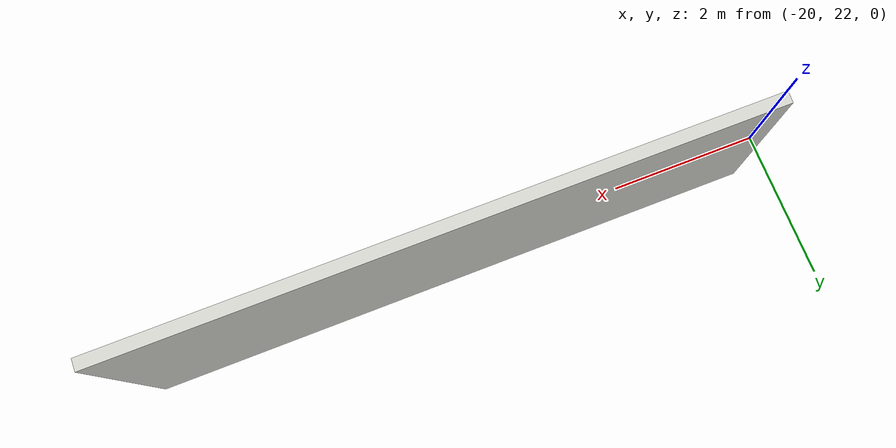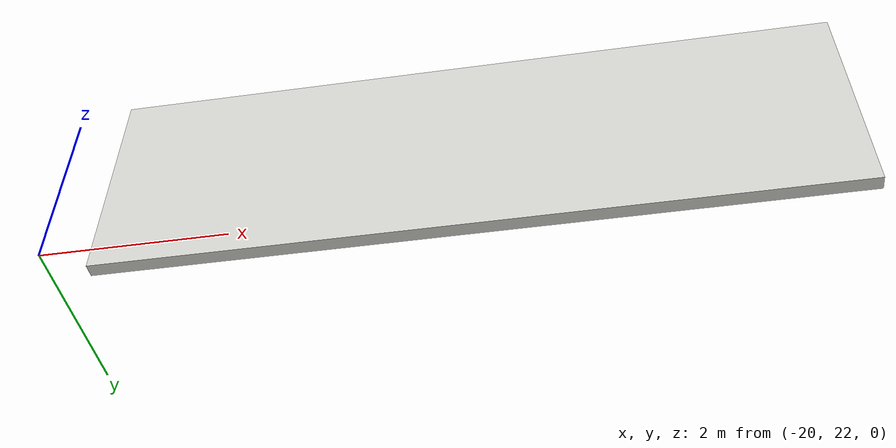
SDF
<?xml version='1.0'?>
<sdf version='1.4'>
  <model name='MIT_Tunnel'>
    <pose frame=''>3.61177 6.74312 0 0 -0 0</pose>

<link name='Wall_1'>
      <collision name='Wall_1_Collision'>
        <geometry>
          <box>
            <size>8 0.15 2.5</size>
          </box>
        </geometry>
        <pose frame=''>0 0 1.25 0 -0 0</pose>
      </collision>
      <visual name='Wall_1_Visual'>
        <pose frame=''>0 0 1.25 0 -0 0</pose>
        <geometry>
          <box>
            <size>8 0.15 2.5</size>
          </box>
        </geometry>
        <material>
          <script>
            <uri>file://media/materials/scripts/gazebo.material</uri>
            <name>Gazebo/CeilingTiled</name>
          </script>
          <ambient>1 1 1 1</ambient>
        </material>
      </visual>
      <pose frame=''>-19.1952 15.5558 0 0 0 -0.001042</pose>
    </link>
<link name='Wall_2'>
      <collision name='Wall_2_Collision'>
        <geometry>
          <box>
            <size>8 0.15 2.5</size>
          </box>
        </geometry>
        <pose frame=''>0 0 1.25 0 -0 0</pose>
      </collision>
      <visual name='Wall_2_Visual'>
        <pose frame=''>0 0 1.25 0 -0 0</pose>
        <geometry>
          <box>
            <size>8 0.15 2.5</size>
          </box>
        </geometry>
        <material>
          <script>
            <uri>file://media/materials/scripts/gazebo.material</uri>
            <name>Gazebo/CeilingTiled</name>
          </script>
          <ambient>1 1 1 1</ambient>
        </material>
      </visual>
      <pose frame=''>-19.1952 15.5558 0 0 0 -0.001042</pose>
    </link>

    <static>1</static>
  </model>
</sdf>
